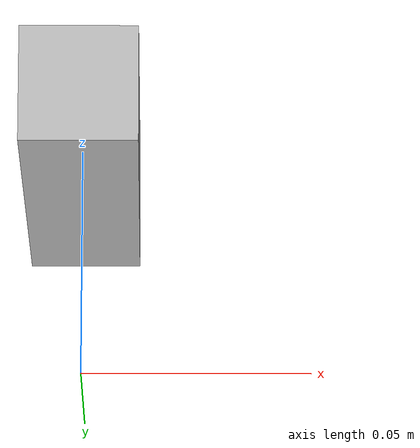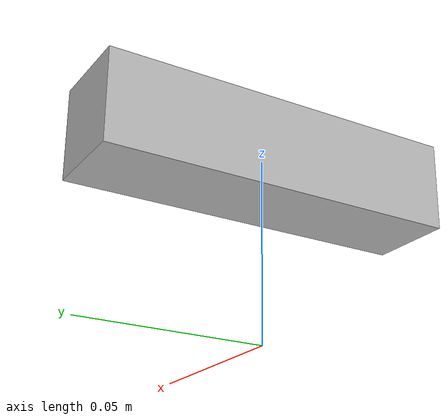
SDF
<?xml version='1.0'?>
<sdf version='1.6'>
  <model name='depth_camera'>
    <link name='link'>
      <pose frame=''>0 0 0.05 0 -0 0</pose>
      <inertial>
        <mass>0.1</mass>
        <inertia>
          <ixx>0.00016667</ixx>
          <iyy>0.00016667</iyy>
          <izz>0.00016667</izz>
          <ixy>0</ixy>
          <ixz>0</ixz>
          <iyz>0</iyz>
        </inertia>
        <pose frame=''>0 0 0 0 -0 0</pose>
      </inertial>
      <self_collide>0</self_collide>
      <kinematic>0</kinematic>
      <sensor name='camera' type='depth'>
        <camera name='__default__'>
          <horizontal_fov>1.047</horizontal_fov>
          <image>
            <width>320</width>
            <height>240</height>
          </image>
          <clip>
            <near>0.1</near>
            <far>100</far>
          </clip>
        </camera>
        <always_on>1</always_on>
        <update_rate>30</update_rate>
        <visualize>1</visualize>
      </sensor>
      <gravity>1</gravity>
      <visual name='visual'>
        <geometry>
          <box>
            <size>0.025 0.1 0.025</size>
          </box>
        </geometry>
        <pose frame=''>0 0 0 0 -0 0</pose>
        <cast_shadows>1</cast_shadows>
        <transparency>0</transparency>
        <material>
          <shader type='vertex'>
            <normal_map>__default__</normal_map>
          </shader>
        </material>
      </visual>
      <collision name='collision'>
        <laser_retro>0</laser_retro>
        <max_contacts>10</max_contacts>
        <pose frame=''>0 0 0 0 -0 0</pose>
        <geometry>
          <box>
            <size>0.025 0.1 0.025</size>
          </box>
        </geometry>
        <surface>
          <friction>
            <ode>
              <mu>1</mu>
              <mu2>1</mu2>
              <fdir1>0 0 0</fdir1>
              <slip1>0</slip1>
              <slip2>0</slip2>
            </ode>
            <torsional>
              <coefficient>1</coefficient>
              <patch_radius>0</patch_radius>
              <surface_radius>0</surface_radius>
              <use_patch_radius>1</use_patch_radius>
              <ode>
                <slip>0</slip>
              </ode>
            </torsional>
          </friction>
          <bounce>
            <restitution_coefficient>0</restitution_coefficient>
            <threshold>1e+06</threshold>
          </bounce>
          <contact>
            <collide_without_contact>0</collide_without_contact>
            <collide_without_contact_bitmask>1</collide_without_contact_bitmask>
            <collide_bitmask>1</collide_bitmask>
            <ode>
              <soft_cfm>0</soft_cfm>
              <soft_erp>0.2</soft_erp>
              <kp>1e+13</kp>
              <kd>1</kd>
              <max_vel>0.01</max_vel>
              <min_depth>0</min_depth>
            </ode>
            <bullet>
              <split_impulse>1</split_impulse>
              <split_impulse_penetration_threshold>-0.01</split_impulse_penetration_threshold>
              <soft_cfm>0</soft_cfm>
              <soft_erp>0.2</soft_erp>
              <kp>1e+13</kp>
              <kd>1</kd>
            </bullet>
          </contact>
        </surface>
      </collision>
    </link>
    <static>1</static>
    <allow_auto_disable>1</allow_auto_disable>
  </model>
</sdf>
